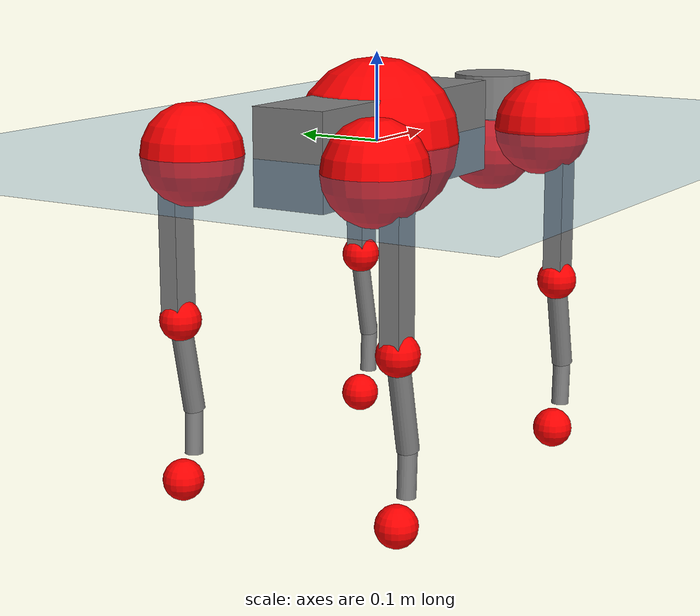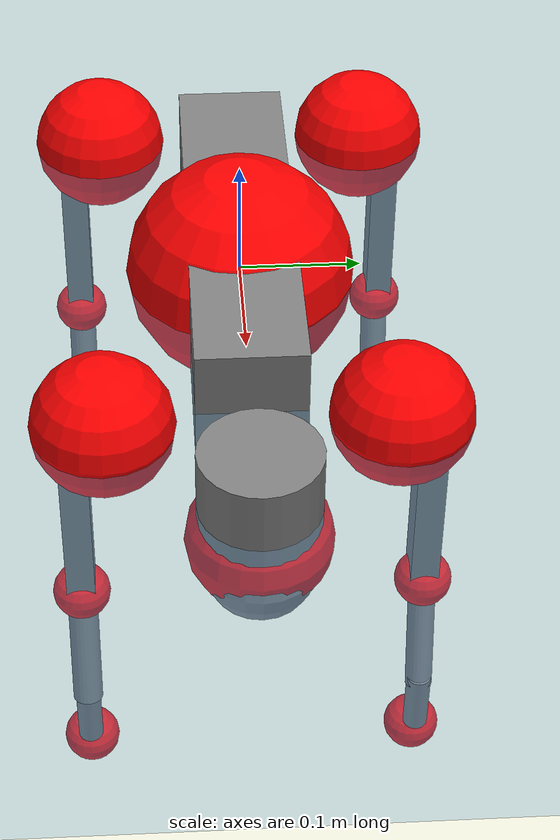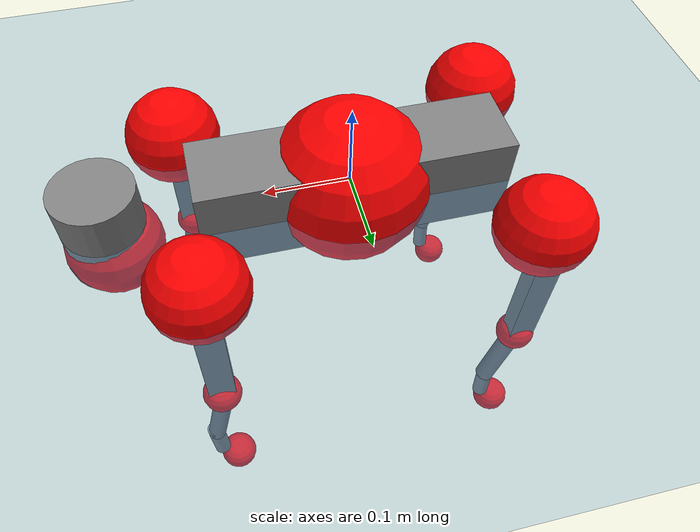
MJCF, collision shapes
<mujoco model="go2">
  <compiler angle="radian" assetdir="assets" balanceinertia="true" inertiafromgeom="false"/>

  <option timestep="0.005" density="1.2" viscosity="2e-05"/>

  <size nkey="1"/>

  <visual>
    <quality shadowsize="8192"/>
    <map shadowclip="0.5"/>
  </visual>

  <default>
    <default class="/">
      <geom contype="0" conaffinity="0" group="1" solref="-1000 -80"/>
      <site size="0.01 0.005 0.005" group="5"/>
      <general forcelimited="true" biastype="affine" gainprm="20" biasprm="0 -20 -0.5"/>
      <default class="go2">
        <joint armature="0.01" damping="0.01" frictionloss="0.2"/>
        <geom condim="1" margin="0.001"/>
        <default class="visual">
          <geom type="mesh" group="2"/>
        </default>
        <default class="collision">
          <geom group="3"/>
          <default class="foot">
            <geom size="0.022 0 0" condim="6" priority="1" friction="0.8 0.02 0.01" solimp="0.015 1 0.022"/>
          </default>
        </default>
        <default class="reward_collision_sphere">
          <geom group="5" rgba="1 0 0 1"/>
        </default>
      </default>
    </default>
  </default>

  <asset>
    <texture type="skybox" colorspace="auto" name="//unnamed_texture_0" builtin="gradient" rgb1="0.95 0.95 0.95" rgb2="0.95 0.95 0.95" width="100" height="600"/>
    <texture type="2d" colorspace="auto" name="texplane" builtin="checker" rgb1="0.345 0.575 0.748" rgb2="0.345 0.575 0.748" markrgb="1 1 1" width="512" height="512"/>
    <material name="MatPlane" class="/" texture="texplane" texuniform="true" texrepeat="2 2" specular="0.9"/>
    <material name="metal" class="/" rgba="0.9 0.95 0.95 1"/>
    <material name="black" class="/" rgba="0 0 0 1"/>
    <material name="white" class="/"/>
    <material name="gray" class="/" rgba="0.671705 0.692426 0.77427 1"/>
    <mesh name="base_0" class="/" file="base_0.obj"/>
    <mesh name="base_1" class="/" file="base_1.obj"/>
    <mesh name="base_2" class="/" file="base_2.obj"/>
    <mesh name="base_3" class="/" file="base_3.obj"/>
    <mesh name="base_4" class="/" file="base_4.obj"/>
    <mesh name="hip_0" class="/" file="hip_0.obj"/>
    <mesh name="hip_1" class="/" file="hip_1.obj"/>
    <mesh name="thigh_0" class="/" file="thigh_0.obj"/>
    <mesh name="thigh_1" class="/" file="thigh_1.obj"/>
    <mesh name="thigh_mirror_0" class="/" file="thigh_mirror_0.obj"/>
    <mesh name="thigh_mirror_1" class="/" file="thigh_mirror_1.obj"/>
    <mesh name="calf_0" class="/" file="calf_0.obj"/>
    <mesh name="calf_1" class="/" file="calf_1.obj"/>
    <mesh name="calf_mirror_0" class="/" file="calf_mirror_0.obj"/>
    <mesh name="calf_mirror_1" class="/" file="calf_mirror_1.obj"/>
    <mesh name="foot" class="/" file="foot.obj"/>
  </asset>

  <worldbody>
    <geom name="floor" class="/" size="100 100 0.125" type="plane" group="0" material="MatPlane"/>
    <light name="toplight_shadow" class="/" pos="0 0 5" dir="0.0990148 0.0990148 -0.990148" type="directional" ambient="0.04 0.04 0.04" diffuse="0.55 0.55 0.55" specular="0.12 0.12 0.12"/>
    <light name="toplight_fill" class="/" pos="0 0 5" dir="0.0990148 0.0990148 -0.990148" type="directional" castshadow="false" ambient="0.04 0.04 0.04" diffuse="0.3 0.3 0.3" specular="0.08 0.08 0.08"/>
    <body name="trunk" childclass="go2" pos="0.000508709 0.000475771 0.000942361" quat="1 0.000271299 0.000222159 -0.00018451">
      <inertial pos="0.0213711 -0.000774913 -0.00485781" quat="-0.000548945 0.713435 -0.00171964 0.700719" mass="5.77876" diaginertia="0.095767 0.0890944 0.0122894"/>
      <joint name="//unnamed_joint_0" type="free" armature="0" damping="0" frictionloss="0"/>
      <geom name="//unnamed_geom_1" class="visual" material="black" mesh="base_0"/>
      <geom name="//unnamed_geom_2" class="visual" material="black" mesh="base_1"/>
      <geom name="//unnamed_geom_3" class="visual" material="black" mesh="base_2"/>
      <geom name="//unnamed_geom_4" class="visual" material="white" mesh="base_3"/>
      <geom name="//unnamed_geom_5" class="visual" material="gray" mesh="base_4"/>
      <geom name="trunk_1" class="collision" size="0.176943 0.043977 0.0536191" type="box"/>
      <geom name="trunk_2" class="collision" size="0.0470343 0.0423308" pos="0.277592 0 0.00867368" type="cylinder"/>
      <geom name="trunk_3" class="collision" size="0.0442122" pos="0.285384 0 -0.0520421"/>
      <geom name="//unnamed_geom_9" class="reward_collision_sphere" size="0.0940686"/>
      <geom name="//unnamed_geom_10" class="reward_collision_sphere" size="0.0564411" pos="0.272722 0 -0.0390316"/>
      <site name="imu" pos="-0.0295767 -0.00749246 0.0393025" size="0.00940686"/>
      <camera name="track" pos="0 -1.96136 0" quat="0.707107 0.707107 0 0" mode="trackcom"/>
      <camera name="ego_camera" pos="0.30389 0 0.0390316" quat="-0.5 -0.5 0.5 0.5"/>
      <body name="FL_hip" pos="0.187858 0.0453883 0.00233098" quat="1 -3.72303e-05 0.000327615 -0.000493767">
        <inertial pos="-0.00422319 0.00205278 -0.000289972" quat="0.496582 0.497663 0.506451 0.499245" mass="0.570754" diaginertia="0.00078407 0.000546624 0.000235369"/>
        <joint name="FL_hip_joint" pos="0 0 0" axis="0.999997 0.00224506 -0.00102103" range="-1.03335 1.04973" armature="0.00925696" damping="0.0100442" frictionloss="0.183501"/>
        <geom name="//unnamed_geom_11" class="visual" material="metal" mesh="hip_0"/>
        <geom name="//unnamed_geom_12" class="visual" material="gray" mesh="hip_1"/>
        <geom name="//unnamed_geom_13" class="collision" size="0.0432715 0.0188137" pos="0 0.0784545 0" quat="0.707107 0.707107 0 0" type="cylinder"/>
        <geom name="//unnamed_geom_14" class="reward_collision_sphere" size="0.0564411" pos="0 0.0686477 0"/>
        <body name="FL_thigh" pos="-0.000275554 0.0935048 0.00202002" quat="1 8.57281e-05 -0.000248377 -0.000198473">
          <inertial pos="-0.00390765 -0.0226056 -0.0297483" quat="0.829405 0.0849067 -0.019785 0.551804" mass="0.949269" diaginertia="0.00522966 0.00534098 0.000432385"/>
          <joint name="FL_thigh_joint" pos="0 0 0" axis="0.000817077 0.999999 -0.000759395" range="-1.57315 3.5209" armature="0.00975342" damping="0" frictionloss="0.188619"/>
          <geom name="//unnamed_geom_15" class="visual" material="metal" mesh="thigh_0"/>
          <geom name="//unnamed_geom_16" class="visual" material="gray" mesh="thigh_1"/>
          <geom name="//unnamed_geom_17" class="collision" size="0.100183 0.0115234 0.0159917" pos="0 0 -0.0923747" quat="0.707107 0 0.707107 0" type="box"/>
          <body name="FL_calf" pos="0.000650274 0.000984732 -0.185302" quat="1 1.44013e-05 9.19259e-05 -0.00012175">
            <inertial pos="0.00640932 0.000493885 -0.122612" quat="0.710132 0.00160959 -0.00447845 0.704052" mass="0.202674" diaginertia="0.00129549 0.0013215 2.60243e-05"/>
            <joint name="FL_calf_joint" pos="0 0 0" axis="0.00159986 0.999985 -0.00520038" range="-2.73855 -0.844102" armature="0.00934167" damping="0.00443948" frictionloss="0.184682"/>
            <geom name="//unnamed_geom_18" class="visual" material="gray" mesh="calf_0"/>
            <geom name="//unnamed_geom_19" class="visual" material="black" mesh="calf_1"/>
            <geom name="FL_calf0" class="collision" size="0.0112882 0.0564411" pos="0.00779205 0 -0.0520421" quat="0.994493 0 -0.104807 0" type="cylinder"/>
            <geom name="//unnamed_geom_21" class="collision" size="0.0103475 0.0305723" pos="0.0194801 0 -0.128371" quat="0.999688 0 0.0249974 0" type="cylinder"/>
            <geom name="//unnamed_geom_22" class="visual" pos="0 0 -0.184749" quat="1 0 0 0" material="black" mesh="foot"/>
            <geom name="FL_foot" class="foot" size="0.0169281" pos="-0.00194801 0 -0.184749"/>
            <geom name="//unnamed_geom_24" class="reward_collision_sphere" size="0.0235171"/>
            <geom name="//unnamed_geom_25" class="reward_collision_sphere" size="0.0235171" pos="-0.00194801 0 -0.184749"/>
            <site name="FL_foot" class="foot" pos="-0.00194801 0 -0.184749" size="0.00940686"/>
          </body>
        </body>
      </body>
      <body name="FR_hip" pos="0.187946 -0.0458689 0.00162789" quat="1 -4.72455e-05 -4.61278e-05 -9.06688e-05">
        <inertial pos="-0.00521632 -0.00114387 -0.000673407" quat="0.497437 0.503302 0.50259 0.496635" mass="0.572452" diaginertia="0.000793941 0.000542186 0.000240062"/>
        <joint name="FR_hip_joint" pos="0 0 0" axis="0.999998 0.000245499 -0.0021275" stiffness="0.00590908" range="-1.05707 1.04584" armature="0.00938449" damping="0.0129289" frictionloss="0.184585"/>
        <geom name="//unnamed_geom_26" class="visual" pos="0 9.87139e-10 4.23404e-08" quat="4.63268e-05 1 0 0" material="metal" mesh="hip_0"/>
        <geom name="//unnamed_geom_27" class="visual" pos="0 1.60027e-09 -1.04724e-07" quat="4.63268e-05 1 0 0" material="gray" mesh="hip_1"/>
        <geom name="//unnamed_geom_28" class="collision" size="0.0432715 0.0188137" pos="0 -0.0784545 0" quat="0.707107 0.707107 0 0" type="cylinder"/>
        <geom name="//unnamed_geom_29" class="reward_collision_sphere" size="0.0564411" pos="0 -0.0686477 0"/>
        <body name="FR_thigh" pos="-0.000706188 -0.0933195 0.00093026" quat="1 1.22338e-06 4.12437e-05 0.000117427">
          <inertial pos="-0.00366811 0.0218636 -0.0292765" quat="0.558009 -0.0218724 0.0844432 0.825238" mass="0.967736" diaginertia="0.00534016 0.00535886 0.000436434"/>
          <joint name="FR_thigh_joint" pos="0 0 0" axis="-0.000527414 -1 0.000216155" range="-3.51068 1.5674" armature="0.00945013" damping="0.0139768" frictionloss="0.191237"/>
          <geom name="//unnamed_geom_30" class="visual" material="metal" mesh="thigh_mirror_0"/>
          <geom name="//unnamed_geom_31" class="visual" material="gray" mesh="thigh_mirror_1"/>
          <geom name="//unnamed_geom_32" class="collision" size="0.100183 0.0115234 0.0159917" pos="0 0 -0.0923747" quat="0.707107 0 0.707107 0" type="box"/>
          <body name="FR_calf" pos="-0.000375919 0.00013785 -0.183965" quat="1 1.85563e-05 2.31912e-05 -3.62919e-06">
            <inertial pos="0.0065543 0.000646388 -0.121287" quat="0.705946 -0.0074094 0.000182079 0.708226" mass="0.197387" diaginertia="0.00126802 0.00132428 2.53528e-05"/>
            <joint name="FR_calf_joint" pos="0 0 0" axis="0.00435017 -0.999988 0.00206017" range="0.838011 2.74087" armature="0.00921588" damping="0.00777353" frictionloss="0.18833"/>
            <geom name="//unnamed_geom_33" class="visual" material="gray" mesh="calf_mirror_0"/>
            <geom name="//unnamed_geom_34" class="visual" material="black" mesh="calf_mirror_1"/>
            <geom name="FR_calf0" class="collision" size="0.0122289 0.0564411" pos="0.00974007 0 -0.0520421" quat="0.995004 0 -0.0998334 0" type="cylinder"/>
            <geom name="//unnamed_geom_36" class="collision" size="0.0103475 0.0305723" pos="0.0194801 0 -0.128371" quat="0.999688 0 0.0249974 0" type="cylinder"/>
            <geom name="//unnamed_geom_37" class="visual" pos="0 0 -0.184749" quat="1 0 0 0" material="black" mesh="foot"/>
            <geom name="FR_foot" class="foot" size="0.0223837" pos="-0.00194801 0 -0.184749"/>
            <geom name="//unnamed_geom_39" class="reward_collision_sphere" size="0.0235171"/>
            <geom name="//unnamed_geom_40" class="reward_collision_sphere" size="0.0235171" pos="-0.00194801 0 -0.184749"/>
            <site name="FR_foot" class="foot" pos="-0.00194801 0 -0.184749" size="0.00940686"/>
          </body>
        </body>
      </body>
      <body name="RL_hip" pos="-0.188681 0.0466609 -0.00147542" quat="1 -0.000358821 0.000309031 0.000170193">
        <inertial pos="0.00538467 0.00197763 -0.0012214" quat="0.505432 0.498949 0.498083 0.497495" mass="0.566785" diaginertia="0.00077486 0.000542749 0.000234462"/>
        <joint name="RL_hip_joint" pos="0 0 0" axis="-0.999897 -0.010536 0.00976312" stiffness="0.000718301" range="-1.02126 1.05808" armature="0.00938587" damping="0.00698499" frictionloss="0.194103"/>
        <geom name="//unnamed_geom_41" class="visual" pos="-9.28988e-10 0 -1.82103e-07" quat="4.63268e-05 0 1 0" material="metal" mesh="hip_0"/>
        <geom name="//unnamed_geom_42" class="visual" pos="-1.506e-09 0 -1.615e-07" quat="4.63268e-05 0 1 0" material="gray" mesh="hip_1"/>
        <geom name="//unnamed_geom_43" class="collision" size="0.0432715 0.0188137" pos="0 0.0784545 0" quat="0.707107 0.707107 0 0" type="cylinder"/>
        <geom name="//unnamed_geom_44" class="reward_collision_sphere" size="0.0564411" pos="0 0.0686477 0"/>
        <body name="RL_thigh" pos="-0.000123572 0.0931498 -0.00126424" quat="1 -3.94216e-06 3.32155e-05 1.6276e-05">
          <inertial pos="-0.00401629 -0.0212633 -0.0299056" quat="0.830876 0.0860388 -0.0199962 0.549402" mass="0.943794" diaginertia="0.00510462 0.00523186 0.000423473"/>
          <joint name="RL_thigh_joint" pos="0 0 0" axis="0.00173469 0.999998 -0.000208776" stiffness="0.000915506" range="-0.536096 4.53292" armature="0.00913226" damping="0.0111477" frictionloss="0.18731"/>
          <geom name="//unnamed_geom_45" class="visual" material="metal" mesh="thigh_0"/>
          <geom name="//unnamed_geom_46" class="visual" material="gray" mesh="thigh_1"/>
          <geom name="//unnamed_geom_47" class="collision" size="0.100183 0.0115234 0.0159917" pos="0 0 -0.0923747" quat="0.707107 0 0.707107 0" type="box"/>
          <body name="RL_calf" pos="0.00111998 -0.00180218 -0.184694" quat="1 0.000101518 -0.000179337 9.84843e-05">
            <inertial pos="0.00517967 0.000447636 -0.123257" quat="0.710502 0.00151587 -0.00458488 0.703679" mass="0.201937" diaginertia="0.00130952 0.00131684 2.62505e-05"/>
            <joint name="RL_calf_joint" pos="0 0 0" axis="-0.00280345 0.999937 0.0108643" range="-2.72604 -0.836228" armature="0.00966317" damping="0.000646766" frictionloss="0.17987"/>
            <geom name="//unnamed_geom_48" class="visual" material="gray" mesh="calf_0"/>
            <geom name="//unnamed_geom_49" class="visual" material="black" mesh="calf_1"/>
            <geom name="RL_calf0" class="collision" size="0.0122289 0.0564411" pos="0.00974007 0 -0.0520421" quat="0.995004 0 -0.0998334 0" type="cylinder"/>
            <geom name="//unnamed_geom_51" class="collision" size="0.0103475 0.0305723" pos="0.0194801 0 -0.128371" quat="0.999688 0 0.0249974 0" type="cylinder"/>
            <geom name="//unnamed_geom_52" class="visual" pos="0 0 -0.184749" quat="1 0 0 0" material="black" mesh="foot"/>
            <geom name="RL_foot" class="foot" size="0.0185429" pos="-0.00194801 0 -0.184749"/>
            <geom name="//unnamed_geom_54" class="reward_collision_sphere" size="0.0235171"/>
            <geom name="//unnamed_geom_55" class="reward_collision_sphere" size="0.0235171" pos="-0.00194801 0 -0.184749"/>
            <site name="RL_foot" class="foot" pos="-0.00194801 0 -0.184749" size="0.00940686"/>
          </body>
        </body>
      </body>
      <body name="RR_hip" pos="-0.188474 -0.0461727 -0.00187412" quat="1 -0.00034887 4.49024e-05 -5.21557e-05">
        <inertial pos="0.00497773 -0.0014686 0.000516323" quat="0.499213 0.496981 0.49827 0.505494" mass="0.549493" diaginertia="0.000757566 0.000528768 0.000232035"/>
        <joint name="RR_hip_joint" pos="0 0 0" axis="-0.999991 -0.00250038 0.00338957" range="-1.06102 1.04867" armature="0.0098649" damping="0.00235461" frictionloss="0.183467"/>
        <geom name="//unnamed_geom_56" class="visual" pos="9.29219e-10 9.87139e-10 -2.24444e-07" quat="2.14617e-09 4.63268e-05 4.63268e-05 -1" material="metal" mesh="hip_0"/>
        <geom name="//unnamed_geom_57" class="visual" pos="1.50543e-09 1.60027e-09 -5.67755e-08" quat="2.14617e-09 4.63268e-05 4.63268e-05 -1" material="gray" mesh="hip_1"/>
        <geom name="//unnamed_geom_58" class="collision" size="0.0432715 0.0188137" pos="0 -0.0784545 0" quat="0.707107 0.707107 0 0" type="cylinder"/>
        <geom name="//unnamed_geom_59" class="reward_collision_sphere" size="0.0564411" pos="0 -0.0686477 0"/>
        <body name="RR_thigh" pos="0.000610095 -0.0939846 -0.000348139" quat="1 2.30409e-06 2.02383e-06 -1.07093e-05">
          <inertial pos="-0.0026781 0.0214944 -0.0284583" quat="0.551574 -0.0200487 0.0847693 0.829565" mass="0.957554" diaginertia="0.00515352 0.0052838 0.000431011"/>
          <joint name="RR_thigh_joint" pos="0 0 0" axis="-0.000200991 -0.999938 -0.0111706" range="-4.55711 0.536463" armature="0.00924584" damping="0.0121579" frictionloss="0.187003"/>
          <geom name="//unnamed_geom_60" class="visual" material="metal" mesh="thigh_mirror_0"/>
          <geom name="//unnamed_geom_61" class="visual" material="gray" mesh="thigh_mirror_1"/>
          <geom name="//unnamed_geom_62" class="collision" size="0.100183 0.0115234 0.0159917" pos="0 0 -0.0923747" quat="0.707107 0 0.707107 0" type="box"/>
          <body name="RR_calf" pos="0.00201296 -0.00015461 -0.185409" quat="1 -1.90881e-05 8.77884e-05 8.52895e-05">
            <inertial pos="0.00550096 0.000624897 -0.122654" quat="0.702954 -0.002982 0.00338309 0.711221" mass="0.203434" diaginertia="0.00131091 0.00133841 2.62442e-05"/>
            <joint name="RR_calf_joint" pos="0 0 0" axis="0.00258001 -0.99997 0.00732012" range="0.836931 2.70821" armature="0.00979366" damping="0.00449355" frictionloss="0.188514"/>
            <geom name="//unnamed_geom_63" class="visual" material="gray" mesh="calf_mirror_0"/>
            <geom name="//unnamed_geom_64" class="visual" material="black" mesh="calf_mirror_1"/>
            <geom name="RR_calf0" class="collision" size="0.0122289 0.0564411" pos="0.00974007 0 -0.0520421" quat="0.995004 0 -0.0998334 0" type="cylinder"/>
            <geom name="//unnamed_geom_66" class="collision" size="0.0103475 0.0305723" pos="0.0194801 0 -0.128371" quat="0.999688 0 0.0249974 0" type="cylinder"/>
            <geom name="//unnamed_geom_67" class="visual" pos="0 0 -0.184749" quat="1 0 0 0" material="black" mesh="foot"/>
            <geom name="RR_foot" class="foot" size="0.0230156" pos="-0.00194801 0 -0.184749"/>
            <geom name="//unnamed_geom_69" class="reward_collision_sphere" size="0.0235171"/>
            <geom name="//unnamed_geom_70" class="reward_collision_sphere" size="0.0235171" pos="-0.00194801 0 -0.184749"/>
            <site name="RR_foot" class="foot" pos="-0.00194801 0 -0.184749" size="0.00940686"/>
          </body>
        </body>
      </body>
    </body>
  </worldbody>

  <contact>
    <pair class="/" geom1="floor" geom2="FL_foot" name="//unnamed_contact_0"/>
    <pair class="/" geom1="floor" geom2="FR_foot" name="//unnamed_contact_1"/>
    <pair class="/" geom1="floor" geom2="RL_foot" name="//unnamed_contact_2"/>
    <pair class="/" geom1="floor" geom2="RR_foot" name="//unnamed_contact_3"/>
  </contact>

  <actuator>
    <general name="FL_hip" class="/" joint="FL_hip_joint" forcerange="-22.6947 22.6947" gainprm="19.0085" biasprm="0 -19.0085 -0.473455"/>
    <general name="FL_thigh" class="/" joint="FL_thigh_joint" forcerange="-22.6146 22.6146" gainprm="19.0085" biasprm="0 -19.0085 -0.473455"/>
    <general name="FL_calf" class="/" joint="FL_calf_joint" forcerange="-41.4793 41.4793" gainprm="19.0085" biasprm="0 -19.0085 -0.473455"/>
    <general name="FR_hip" class="/" joint="FR_hip_joint" forcerange="-22.352 22.352" gainprm="19.0085" biasprm="0 -19.0085 -0.473455"/>
    <general name="FR_thigh" class="/" joint="FR_thigh_joint" forcerange="-21.501 21.501" gainprm="19.0085" biasprm="0 -19.0085 -0.473455"/>
    <general name="FR_calf" class="/" joint="FR_calf_joint" forcerange="-45.3233 45.3233" gainprm="19.0085" biasprm="0 -19.0085 -0.473455"/>
    <general name="RL_hip" class="/" joint="RL_hip_joint" forcerange="-23.0208 23.0208" gainprm="19.0085" biasprm="0 -19.0085 -0.473455"/>
    <general name="RL_thigh" class="/" joint="RL_thigh_joint" forcerange="-21.5482 21.5482" gainprm="19.0085" biasprm="0 -19.0085 -0.473455"/>
    <general name="RL_calf" class="/" joint="RL_calf_joint" forcerange="-42.1908 42.1908" gainprm="19.0085" biasprm="0 -19.0085 -0.473455"/>
    <general name="RR_hip" class="/" joint="RR_hip_joint" forcerange="-22.569 22.569" gainprm="19.0085" biasprm="0 -19.0085 -0.473455"/>
    <general name="RR_thigh" class="/" joint="RR_thigh_joint" forcerange="-21.1055 21.1055" gainprm="19.0085" biasprm="0 -19.0085 -0.473455"/>
    <general name="RR_calf" class="/" joint="RR_calf_joint" forcerange="-42.9673 42.9673" gainprm="19.0085" biasprm="0 -19.0085 -0.473455"/>
  </actuator>

  <sensor>
    <gyro site="imu" name="imu_angular_velocity"/>
    <velocimeter site="imu" name="imu_linear_velocity"/>
    <framelinvel objtype="site" objname="FL_foot" name="FL_foot_global_linear_velocity"/>
    <framelinvel objtype="site" objname="FR_foot" name="FR_foot_global_linear_velocity"/>
    <framelinvel objtype="site" objname="RL_foot" name="RL_foot_global_linear_velocity"/>
    <framelinvel objtype="site" objname="RR_foot" name="RR_foot_global_linear_velocity"/>
  </sensor>

  <keyframe>
    <key name="home" qpos="0 0 0.325 1 0 0 0 0.1 0.8 -1.5 -0.1 -0.8 1.5 -0.1 0.8 -1.5 0.1 -0.8 1.5"/>
  </keyframe>
</mujoco>
